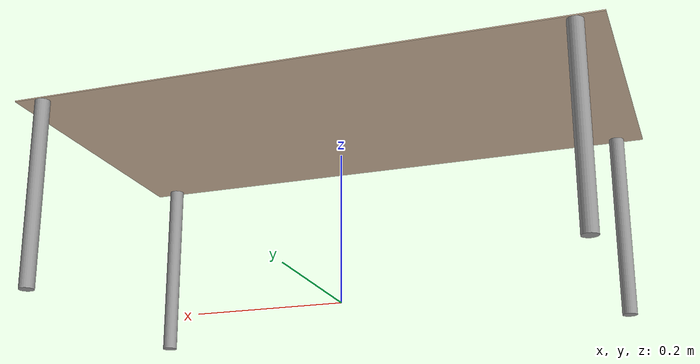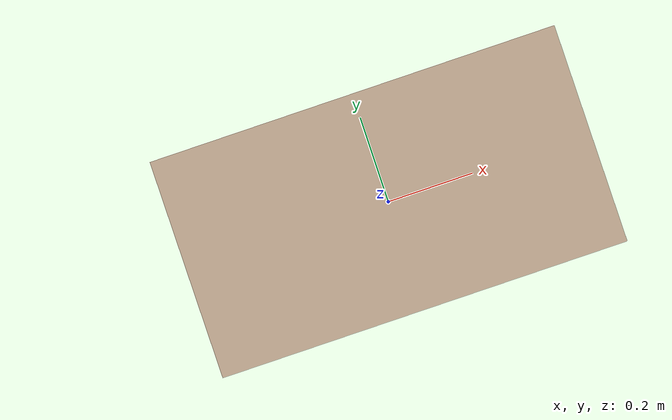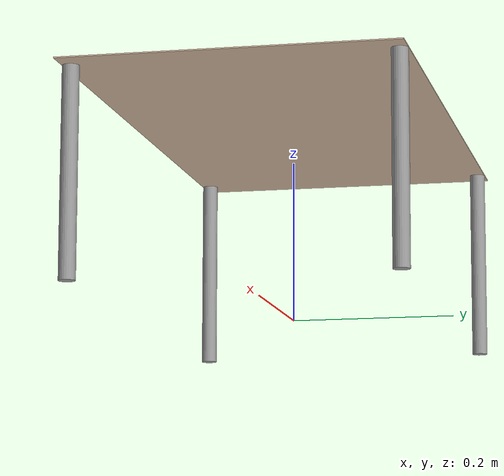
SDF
<?xml version="1.0" ?>
<sdf version="1.7">
    <model name="small_table">
        <static>true</static>
        <link name="link">
            <collision name="surface">
                <pose>0 0 0.25 0 0 0</pose>
                <geometry>
                    <box>
                        <size>0.75 0.4 0.0015</size>
                    </box>
                </geometry>
                <surface>
                    <friction>
                        <ode>
                            <mu>0.6</mu>
                            <mu2>0.6</mu2>
                        </ode>
                    </friction>
                </surface>
            </collision>
            <visual name="visual1">
                <pose>0 0 0.25 0 0 0</pose>
                <geometry>
                    <box>
                        <size>0.75 0.4 0.0015</size>
                    </box>
                </geometry>
                <material>
                    <ambient>0.8 0.7 0.6 1.0</ambient>  <diffuse>0.8 0.7 0.6 1.0</diffuse>
                    <specular>0.1 0.1 0.1 1.0</specular> <emissive>0 0 0 1.0</emissive>    </material>
            </visual>
            <collision name="front_left_leg">
                <pose>0.34 0.19 0.125 0 0 0</pose>
                <geometry>
                    <cylinder>
                        <radius>0.01</radius>
                        <length>0.25</length>
                    </cylinder>
                </geometry>
            </collision>
            <visual name="front_left_leg">
                <pose>0.34 0.19 0.125 0 0 0</pose>
                <geometry>
                    <cylinder>
                        <radius>0.01</radius>
                        <length>0.25</length>
                    </cylinder>
                </geometry>
                <material>
                    <diffuse>0.5 0.5 0.5</diffuse>
                    <script>
                        <uri>file://media/materials/scripts/gazebo.material</uri>
                        <name>Gazebo/Grey</name>
                    </script>
                </material>
            </visual>
            <collision name="front_right_leg">
                <pose>0.34 -0.19 0.125 0 0 0</pose>
                <geometry>
                    <cylinder>
                        <radius>0.01</radius>
                        <length>0.25</length>
                    </cylinder>
                </geometry>
            </collision>
            <visual name="front_right_leg">
                <pose>0.34 -0.19 0.125 0 0 0</pose>
                <geometry>
                    <cylinder>
                        <radius>0.01</radius>
                        <length>0.25</length>
                    </cylinder>
                </geometry>
                <material>
                    <diffuse>0.5 0.5 0.5</diffuse>
                    <script>
                        <uri>file://media/materials/scripts/gazebo.material</uri>
                        <name>Gazebo/Grey</name>
                    </script>
                </material>
            </visual>
            <collision name="back_right_leg">
                <pose>-0.34 -0.19 0.125 0 0 0</pose>
                <geometry>
                    <cylinder>
                        <radius>0.01</radius>
                        <length>0.25</length>
                    </cylinder>
                </geometry>
            </collision>
            <visual name="back_right_leg">
                <pose>-0.34 -0.19 0.125 0 0 0</pose>
                <geometry>
                    <cylinder>
                        <radius>0.01</radius>
                        <length>0.25</length>
                    </cylinder>
                </geometry>
                <material>
                    <diffuse>0.5 0.5 0.5</diffuse>
                    <script>
                        <uri>file://media/materials/scripts/gazebo.material</uri>
                        <name>Gazebo/Grey</name>
                    </script>
                </material>
            </visual>
            <collision name="back_left_leg">
                <pose>-0.34 0.19 0.125 0 0 0</pose>
                <geometry>
                    <cylinder>
                        <radius>0.01</radius>
                        <length>0.25</length>
                    </cylinder>
                </geometry>
            </collision>
            <visual name="back_left_leg">
                <pose>-0.34 0.19 0.125 0 0 0</pose>
                <geometry>
                    <cylinder>
                        <radius>0.01</radius>
                        <length>0.25</length>
                    </cylinder>
                </geometry>
                <material>
                    <diffuse>0.5 0.5 0.5</diffuse>
                    <script>
                        <uri>file://media/materials/scripts/gazebo.material</uri>
                        <name>Gazebo/Grey</name>
                    </script>
                </material>
            </visual>
        </link>
    </model>
</sdf>
